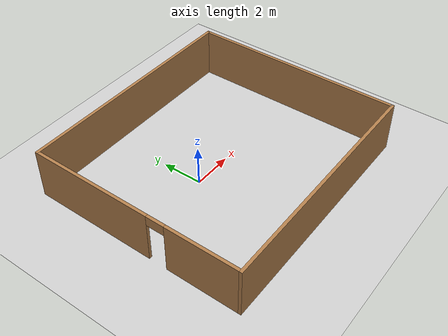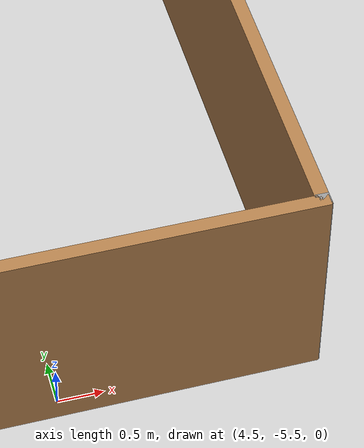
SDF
<sdf version="1.7">
 <world name="default">
  <light name="sun" type="directional">
   <pose>0 0 10 0 -0 0</pose>
   <diffuse>0.8 0.8 0.8 1</diffuse>
   <specular>0.2 0.2 0.2 1</specular>
   <attenuation>
    <range>1000</range>
    <constant>0.9</constant>
    <linear>0.01</linear>
    <quadratic>0.001</quadratic>
   </attenuation>
   <direction>-0.5 0.1 -0.9</direction>
   <spot><inner_angle>0</inner_angle><outer_angle>0</outer_angle><falloff>0</falloff></spot>
  </light>
  <model name="ground_plane">
   <static>1</static>
   <link name="link">
    <collision name="collision">
     <geometry><plane><normal>0 0 1</normal><size>100 100</size></plane></geometry>
     <surface>
      <contact><collide_bitmask>65535</collide_bitmask></contact>
      <friction><ode><mu>100</mu><mu2>50</mu2></ode></friction>
     </surface>
    </collision>
    <visual name="visual">
     <cast_shadows>0</cast_shadows>
     <geometry><plane><normal>0 0 1</normal><size>100 100</size></plane></geometry>
     <material>
      <script><uri>file://media/materials/scripts/gazebo.material</uri><name>Gazebo/Grey</name></script>
     </material>
    </visual>
   </link>
  </model>
  <gravity>0 0 -9.8</gravity>
  <magnetic_field>6e-06 2.3e-05 -4.2e-05</magnetic_field>
  <atmosphere type="adiabatic"/>
  <physics type="ode">
   <max_step_size>0.001</max_step_size>
   <real_time_factor>1</real_time_factor>
   <real_time_update_rate>1000</real_time_update_rate>
  </physics>
  <scene><ambient>0.4 0.4 0.4 1</ambient><background>0.7 0.7 0.7 1</background><shadows>1</shadows></scene>
  <spherical_coordinates>
   <surface_model>EARTH_WGS84</surface_model>
   <latitude_deg>0</latitude_deg>
   <longitude_deg>0</longitude_deg>
   <elevation>0</elevation>
   <heading_deg>0</heading_deg>
  </spherical_coordinates>
  <model name="cafe_hall">
   <pose>1.31049 -0.314972 0 0 -0 0</pose>
   <link name="Wall_0">
    <collision name="Wall_0_Collision">
     <geometry><box><size>12 0.15 2.5</size></box></geometry>
     <pose>0 0 1.25 0 -0 0</pose>
    </collision>
    <visual name="Wall_0_Visual">
     <pose>0 0 1.25 0 -0 0</pose>
     <geometry><box><size>12 0.15 2.5</size></box></geometry>
     <material>
      <script><uri>file://media/materials/scripts/gazebo.material</uri><name>Gazebo/Wood</name></script>
      <ambient>1 1 1 1</ambient>
     </material>
     <meta><layer>0</layer></meta>
    </visual>
    <pose>-0.005035 -5.30004 0 0 -0 0</pose>
   </link>
   <link name="Wall_1">
    <collision name="Wall_1_Collision">
     <geometry><box><size>0.15 0.15 2.5</size></box></geometry>
     <pose>0 0 1.25 0 -0 0</pose>
    </collision>
    <visual name="Wall_1_Visual">
     <pose>0 0 1.25 0 -0 0</pose>
     <geometry><box><size>0.15 0.15 2.5</size></box></geometry>
     <material>
      <script><uri>file://media/materials/scripts/gazebo.material</uri><name>Gazebo/Grey</name></script>
      <ambient>1 1 1 1</ambient>
     </material>
     <meta><layer>0</layer></meta>
    </visual>
    <pose>5.92997 -5.29003 0 0 -0 0</pose>
   </link>
   <link name="Wall_10">
    <collision name="Wall_10_Collision">
     <geometry><box><size>10.74 0.15 2.5</size></box></geometry>
     <pose>0 0 1.25 0 -0 0</pose>
    </collision>
    <visual name="Wall_10_Visual">
     <pose>0 0 1.25 0 -0 0</pose>
     <geometry><box><size>10.74 0.15 2.5</size></box></geometry>
     <material>
      <script><uri>file://media/materials/scripts/gazebo.material</uri><name>Gazebo/Wood</name></script>
      <ambient>1 1 1 1</ambient>
     </material>
     <meta><layer>0</layer></meta>
    </visual>
    <pose>5.92497 0.004965 0 0 -0 -1.56985</pose>
   </link>
   <link name="Wall_11">
    <collision name="Wall_11_Collision">
     <geometry><box><size>0.15 0.15 2.5</size></box></geometry>
     <pose>0 0 1.25 0 -0 0</pose>
    </collision>
    <visual name="Wall_11_Visual">
     <pose>0 0 1.25 0 -0 0</pose>
     <geometry><box><size>0.15 0.15 2.5</size></box></geometry>
     <material>
      <script><uri>file://media/materials/scripts/gazebo.material</uri><name>Gazebo/Grey</name></script>
      <ambient>1 1 1 1</ambient>
     </material>
     <meta><layer>0</layer></meta>
    </visual>
    <pose>5.92997 -5.29003 0 0 -0 0</pose>
   </link>
   <link name="Wall_3">
    <pose>-5.93004 -3.5e-05 0 0 -0 1.5708</pose>
    <visual name="Wall_3_Visual_0">
     <pose>-3.5432 0 1.25 0 -0 0</pose>
     <geometry><box><size>3.66359 0.15 2.5</size></box></geometry>
     <material>
      <script><uri>file://media/materials/scripts/gazebo.material</uri><name>Gazebo/Wood</name></script>
      <ambient>1 1 1 1</ambient>
     </material>
     <meta><layer>0</layer></meta>
    </visual>
    <collision name="Wall_3_Collision_0">
     <geometry><box><size>3.66359 0.15 2.5</size></box></geometry>
     <pose>-3.5432 0 1.25 0 -0 0</pose>
    </collision>
    <visual name="Wall_3_Visual_1">
     <pose>2.2818 0 1.25 0 -0 0</pose>
     <geometry><box><size>6.1864 0.15 2.5</size></box></geometry>
     <material>
      <script><uri>file://media/materials/scripts/gazebo.material</uri><name>Gazebo/Wood</name></script>
      <ambient>1 1 1 1</ambient>
     </material>
     <meta><layer>0</layer></meta>
    </visual>
    <collision name="Wall_3_Collision_1">
     <geometry><box><size>6.1864 0.15 2.5</size></box></geometry>
     <pose>2.2818 0 1.25 0 -0 0</pose>
    </collision>
    <visual name="Wall_3_Visual_2">
     <pose>-1.26141 0 2.25 0 -0 0</pose>
     <geometry><box><size>0.9 0.15 0.5</size></box></geometry>
     <material>
      <script><uri>file://media/materials/scripts/gazebo.material</uri><name>Gazebo/Wood</name></script>
      <ambient>1 1 1 1</ambient>
     </material>
     <meta><layer>0</layer></meta>
    </visual>
    <collision name="Wall_3_Collision_2">
     <geometry><box><size>0.9 0.15 0.5</size></box></geometry>
     <pose>-1.26141 0 2.25 0 -0 0</pose>
    </collision>
   </link>
   <link name="Wall_4">
    <collision name="Wall_4_Collision">
     <geometry><box><size>0.15 0.15 2.5</size></box></geometry>
     <pose>0 0 1.25 0 -0 0</pose>
    </collision>
    <visual name="Wall_4_Visual">
     <pose>0 0 1.25 0 -0 0</pose>
     <geometry><box><size>0.15 0.15 2.5</size></box></geometry>
     <material>
      <script><uri>file://media/materials/scripts/gazebo.material</uri><name>Gazebo/Grey</name></script>
      <ambient>1 1 1 1</ambient>
     </material>
     <meta><layer>0</layer></meta>
    </visual>
    <pose>-5.93004 5.29996 0 0 -0 0</pose>
   </link>
   <link name="Wall_9">
    <collision name="Wall_9_Collision">
     <geometry><box><size>12 0.15 2.5</size></box></geometry>
     <pose>0 0 1.25 0 -0 0</pose>
    </collision>
    <visual name="Wall_9_Visual">
     <pose>0 0 1.25 0 -0 0</pose>
     <geometry><box><size>12 0.15 2.5</size></box></geometry>
     <material>
      <script><uri>file://media/materials/scripts/gazebo.material</uri><name>Gazebo/Wood</name></script>
      <ambient>1 1 1 1</ambient>
     </material>
     <meta><layer>0</layer></meta>
    </visual>
    <pose>-0.005035 5.29996 0 0 -0 0</pose>
   </link>
   <static>1</static>
  </model>
 </world>
</sdf>
